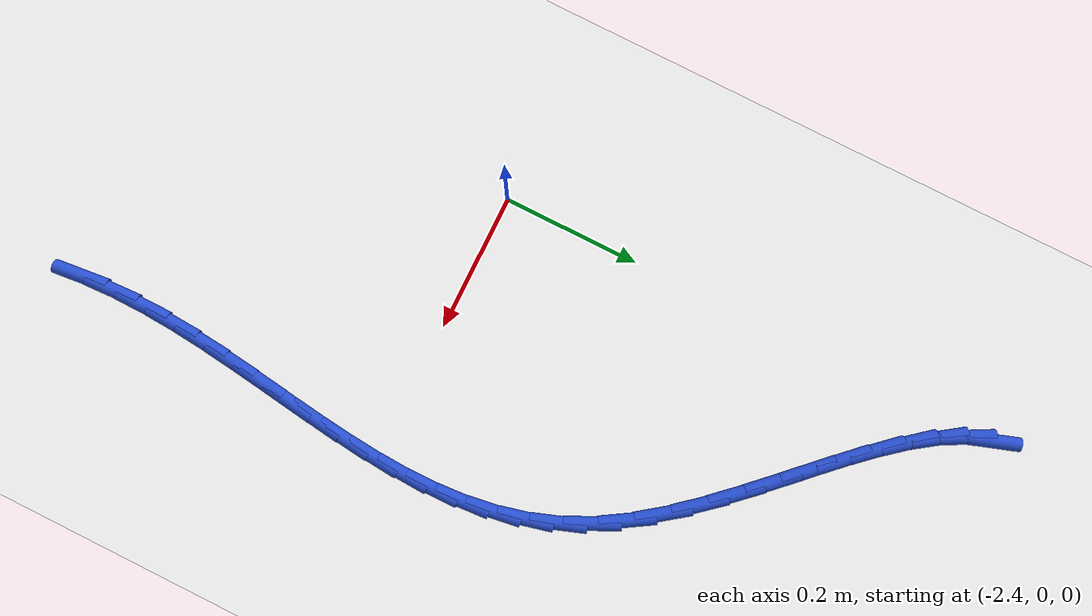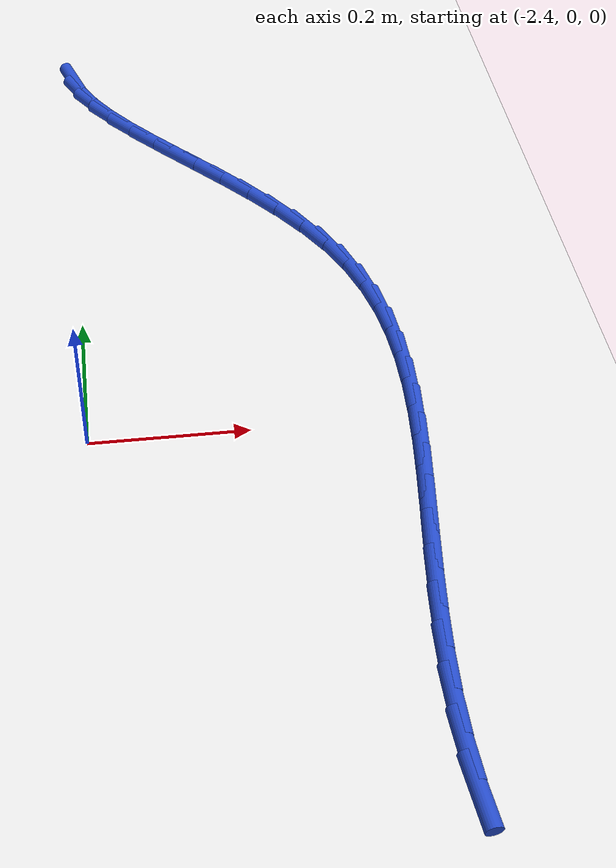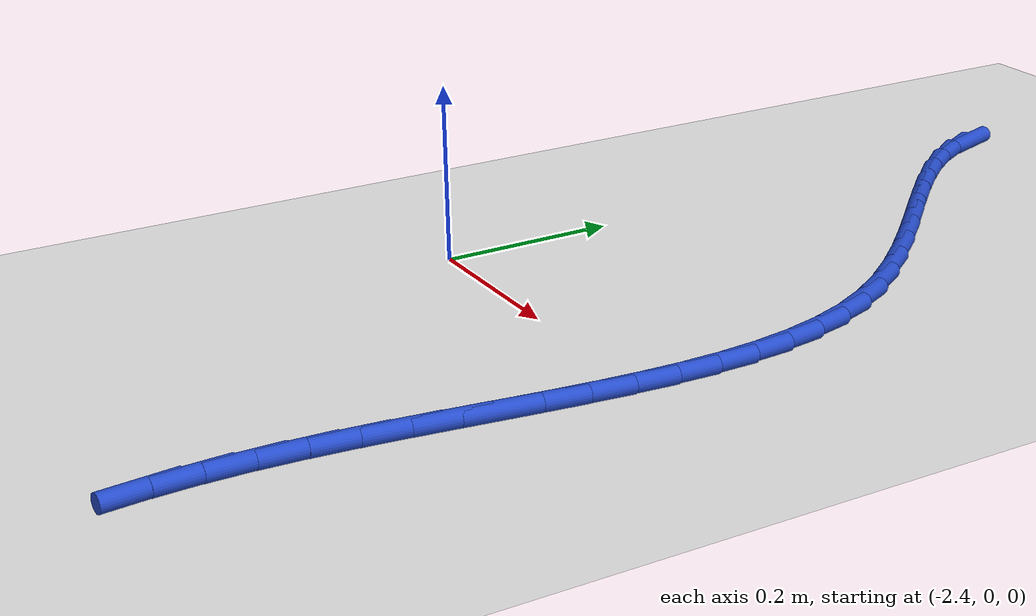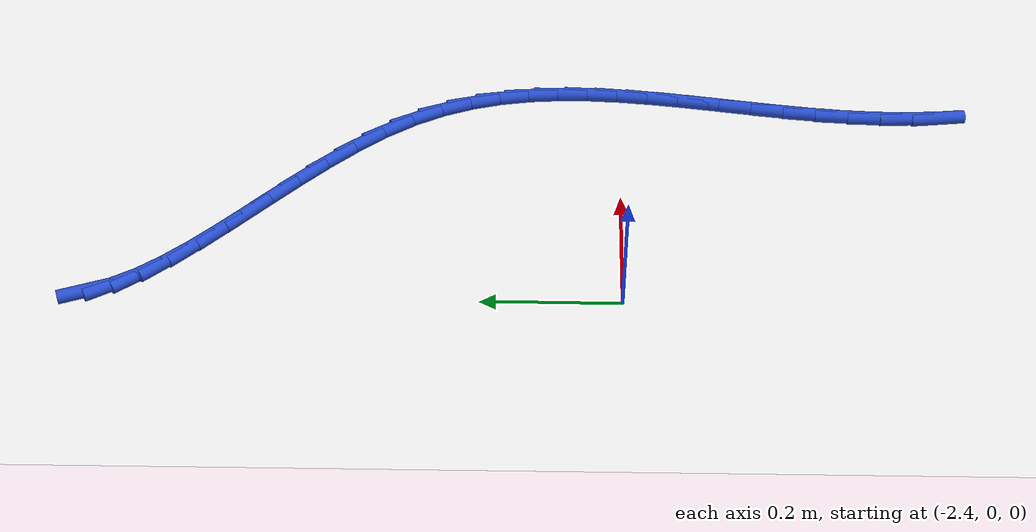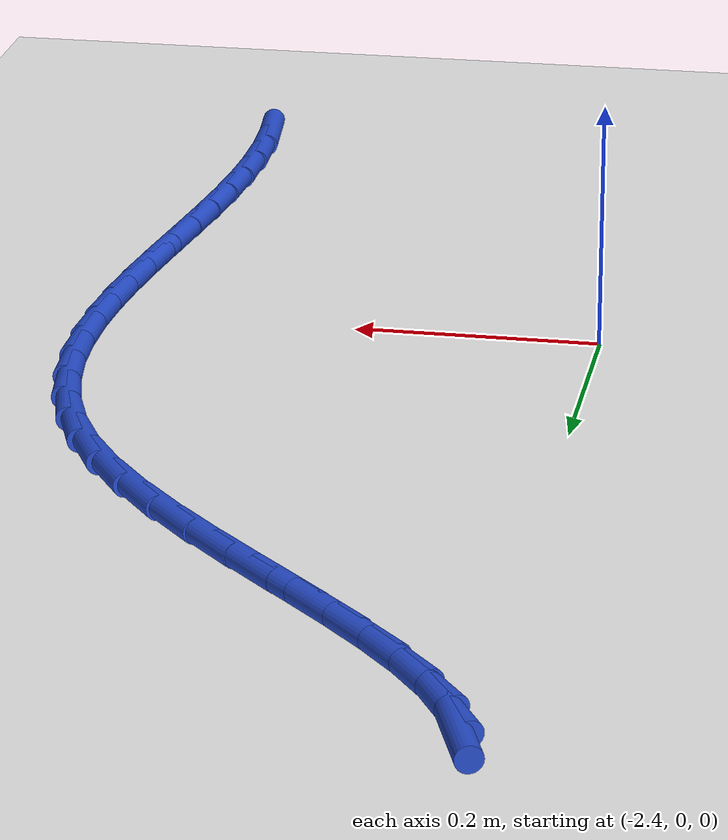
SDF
<sdf version="1.6">
 <world name="default">
  <model name="ground_plane">
   <static>1</static>
   <link name="link">
    <collision name="collision">
     <geometry><plane><normal>0 0 1</normal><size>100 100</size></plane></geometry>
     <surface><friction><ode><mu>100</mu><mu2>50</mu2></ode></friction></surface>
    </collision>
    <visual name="visual">
     <cast_shadows>0</cast_shadows>
     <geometry><plane><normal>0 0 1</normal><size>100 100</size></plane></geometry>
     <material>
      <script><uri>file://media/materials/scripts/gazebo.material</uri><name>Gazebo/WhiteGlow</name></script>
     </material>
    </visual>
   </link>
  </model>
  <model name="line">
   <link name="link_78">
    <pose>-2.3961420771294093 0.744754704922399 0.01 0 1.57 -1.2450248330038676</pose>
    <collision name="collision">
     <geometry><cylinder><radius>0.01</radius><length>0.08</length></cylinder></geometry>
    </collision>
    <visual name="visual">
     <material>
      <script><name>Gazebo/Blue</name><uri>file://media/materials/scripts/gazebo.material</uri></script>
     </material>
     <geometry><cylinder><radius>0.01</radius><length>0.08</length></cylinder></geometry>
    </visual>
   </link>
   <link name="link_79">
    <pose>-2.3850495198663983 0.7119177442947239 0.01 0 1.57 -1.0720881414288603</pose>
    <collision name="collision">
     <geometry><cylinder><radius>0.01</radius><length>0.08</length></cylinder></geometry>
    </collision>
    <visual name="visual">
     <material>
      <script><name>Gazebo/Blue</name><uri>file://media/materials/scripts/gazebo.material</uri></script>
     </material>
     <geometry><cylinder><radius>0.01</radius><length>0.08</length></cylinder></geometry>
    </visual>
   </link>
   <link name="link_80">
    <pose>-2.3668459981426637 0.6784938698624128 0.01 0 1.57 -0.9536956344488489</pose>
    <collision name="collision">
     <geometry><cylinder><radius>0.01</radius><length>0.08</length></cylinder></geometry>
    </collision>
    <visual name="visual">
     <material>
      <script><name>Gazebo/Blue</name><uri>file://media/materials/scripts/gazebo.material</uri></script>
     </material>
     <geometry><cylinder><radius>0.01</radius><length>0.08</length></cylinder></geometry>
    </visual>
   </link>
   <link name="link_81">
    <pose>-2.342693023057389 0.6444535911231485 0.01 0 1.57 -0.8754497083096799</pose>
    <collision name="collision">
     <geometry><cylinder><radius>0.01</radius><length>0.08</length></cylinder></geometry>
    </collision>
    <visual name="visual">
     <material>
      <script><name>Gazebo/Blue</name><uri>file://media/materials/scripts/gazebo.material</uri></script>
     </material>
     <geometry><cylinder><radius>0.01</radius><length>0.08</length></cylinder></geometry>
    </visual>
   </link>
   <link name="link_82">
    <pose>-2.3137521057097565 0.6097674175746115 0.01 0 1.57 -0.8265093204830671</pose>
    <collision name="collision">
     <geometry><cylinder><radius>0.01</radius><length>0.08</length></cylinder></geometry>
    </collision>
    <visual name="visual">
     <material>
      <script><name>Gazebo/Blue</name><uri>file://media/materials/scripts/gazebo.material</uri></script>
     </material>
     <geometry><cylinder><radius>0.01</radius><length>0.08</length></cylinder></geometry>
    </visual>
   </link>
   <link name="link_83">
    <pose>-2.281184757198949 0.5744058587144832 0.01 0 1.57 -0.799942636473255</pose>
    <collision name="collision">
     <geometry><cylinder><radius>0.01</radius><length>0.08</length></cylinder></geometry>
    </collision>
    <visual name="visual">
     <material>
      <script><name>Gazebo/Blue</name><uri>file://media/materials/scripts/gazebo.material</uri></script>
     </material>
     <geometry><cylinder><radius>0.01</radius><length>0.08</length></cylinder></geometry>
    </visual>
   </link>
   <link name="link_84">
    <pose>-2.2461524886241513 0.5383394240404458 0.01 0 1.57 -0.7917577419480151</pose>
    <collision name="collision">
     <geometry><cylinder><radius>0.01</radius><length>0.08</length></cylinder></geometry>
    </collision>
    <visual name="visual">
     <material>
      <script><name>Gazebo/Blue</name><uri>file://media/materials/scripts/gazebo.material</uri></script>
     </material>
     <geometry><cylinder><radius>0.01</radius><length>0.08</length></cylinder></geometry>
    </visual>
   </link>
   <link name="link_85">
    <pose>-2.209816811084546 0.5015386230501798 0.01 0 1.57 -0.8000790320910562</pose>
    <collision name="collision">
     <geometry><cylinder><radius>0.01</radius><length>0.08</length></cylinder></geometry>
    </collision>
    <visual name="visual">
     <material>
      <script><name>Gazebo/Blue</name><uri>file://media/materials/scripts/gazebo.material</uri></script>
     </material>
     <geometry><cylinder><radius>0.01</radius><length>0.08</length></cylinder></geometry>
    </visual>
   </link>
   <link name="link_86">
    <pose>-2.1733392356793173 0.46397396524136736 0.01 0 1.57 -0.8246654434546049</pose>
    <collision name="collision">
     <geometry><cylinder><radius>0.01</radius><length>0.08</length></cylinder></geometry>
    </collision>
    <visual name="visual">
     <material>
      <script><name>Gazebo/Blue</name><uri>file://media/materials/scripts/gazebo.material</uri></script>
     </material>
     <geometry><cylinder><radius>0.01</radius><length>0.08</length></cylinder></geometry>
    </visual>
   </link>
   <link name="link_87">
    <pose>-2.137881273507647 0.4256159601116897 0.01 0 1.57 -0.8667006648261706</pose>
    <collision name="collision">
     <geometry><cylinder><radius>0.01</radius><length>0.08</length></cylinder></geometry>
    </collision>
    <visual name="visual">
     <material>
      <script><name>Gazebo/Blue</name><uri>file://media/materials/scripts/gazebo.material</uri></script>
     </material>
     <geometry><cylinder><radius>0.01</radius><length>0.08</length></cylinder></geometry>
    </visual>
   </link>
   <link name="link_88">
    <pose>-2.104604435668718 0.38643511715882756 0.01 0 1.57 -0.9287464094243307</pose>
    <collision name="collision">
     <geometry><cylinder><radius>0.01</radius><length>0.08</length></cylinder></geometry>
    </collision>
    <visual name="visual">
     <material>
      <script><name>Gazebo/Blue</name><uri>file://media/materials/scripts/gazebo.material</uri></script>
     </material>
     <geometry><cylinder><radius>0.01</radius><length>0.08</length></cylinder></geometry>
    </visual>
   </link>
   <link name="link_89">
    <pose>-2.074670233261716 0.34640194588046347 0.01 0 1.57 -1.0146924329869844</pose>
    <collision name="collision">
     <geometry><cylinder><radius>0.01</radius><length>0.08</length></cylinder></geometry>
    </collision>
    <visual name="visual">
     <material>
      <script><name>Gazebo/Blue</name><uri>file://media/materials/scripts/gazebo.material</uri></script>
     </material>
     <geometry><cylinder><radius>0.01</radius><length>0.08</length></cylinder></geometry>
    </visual>
   </link>
   <link name="link_90">
    <pose>-2.049240128281186 0.3054869583836929 0.01 0 1.57 -1.1227490152327424</pose>
    <collision name="collision">
     <geometry><cylinder><radius>0.01</radius><length>0.08</length></cylinder></geometry>
    </collision>
    <visual name="visual">
     <material>
      <script><name>Gazebo/Blue</name><uri>file://media/materials/scripts/gazebo.material</uri></script>
     </material>
     <geometry><cylinder><radius>0.01</radius><length>0.08</length></cylinder></geometry>
    </visual>
   </link>
   <link name="link_91">
    <pose>-2.0291448115217743 0.2636782439180542 0.01 0 1.57 -1.2316161698890424</pose>
    <collision name="collision">
     <geometry><cylinder><radius>0.01</radius><length>0.08</length></cylinder></geometry>
    </collision>
    <visual name="visual">
     <material>
      <script><name>Gazebo/Blue</name><uri>file://media/materials/scripts/gazebo.material</uri></script>
     </material>
     <geometry><cylinder><radius>0.01</radius><length>0.08</length></cylinder></geometry>
    </visual>
   </link>
   <link name="link_92">
    <pose>-2.0140955471194406 0.22102337793333438 0.01 0 1.57 -1.3330167986435526</pose>
    <collision name="collision">
     <geometry><cylinder><radius>0.01</radius><length>0.08</length></cylinder></geometry>
    </collision>
    <visual name="visual">
     <material>
      <script><name>Gazebo/Blue</name><uri>file://media/materials/scripts/gazebo.material</uri></script>
     </material>
     <geometry><cylinder><radius>0.01</radius><length>0.08</length></cylinder></geometry>
    </visual>
   </link>
   <link name="link_93">
    <pose>-2.00356702102932 0.1775825076158713 0.01 0 1.57 -1.4239421245362538</pose>
    <collision name="collision">
     <geometry><cylinder><radius>0.01</radius><length>0.08</length></cylinder></geometry>
    </collision>
    <visual name="visual">
     <material>
      <script><name>Gazebo/Blue</name><uri>file://media/materials/scripts/gazebo.material</uri></script>
     </material>
     <geometry><cylinder><radius>0.01</radius><length>0.08</length></cylinder></geometry>
    </visual>
   </link>
   <link name="link_94">
    <pose>-1.9970339192065483 0.13341578015200034 0.01 0 1.57 -1.5025814509903588</pose>
    <collision name="collision">
     <geometry><cylinder><radius>0.01</radius><length>0.08</length></cylinder></geometry>
    </collision>
    <visual name="visual">
     <material>
      <script><name>Gazebo/Blue</name><uri>file://media/materials/scripts/gazebo.material</uri></script>
     </material>
     <geometry><cylinder><radius>0.01</radius><length>0.08</length></cylinder></geometry>
    </visual>
   </link>
   <link name="link_95">
    <pose>-1.993970927606261 0.08858334272805797 0.01 0 1.57 -1.5681950865210106</pose>
    <collision name="collision">
     <geometry><cylinder><radius>0.01</radius><length>0.08</length></cylinder></geometry>
    </collision>
    <visual name="visual">
     <material>
      <script><name>Gazebo/Blue</name><uri>file://media/materials/scripts/gazebo.material</uri></script>
     </material>
     <geometry><cylinder><radius>0.01</radius><length>0.08</length></cylinder></geometry>
    </visual>
   </link>
   <link name="link_96">
    <pose>-1.993852732183594 0.04314534253038067 0.01 0 1.57 1.5207920310600427</pose>
    <collision name="collision">
     <geometry><cylinder><radius>0.01</radius><length>0.08</length></cylinder></geometry>
    </collision>
    <visual name="visual">
     <material>
      <script><name>Gazebo/Blue</name><uri>file://media/materials/scripts/gazebo.material</uri></script>
     </material>
     <geometry><cylinder><radius>0.01</radius><length>0.08</length></cylinder></geometry>
    </visual>
   </link>
   <link name="link_97">
    <pose>-1.996154018893682 -0.0028380732546953134 0.01 0 1.57 1.4807548169322762</pose>
    <collision name="collision">
     <geometry><cylinder><radius>0.01</radius><length>0.08</length></cylinder></geometry>
    </collision>
    <visual name="visual">
     <material>
      <script><name>Gazebo/Blue</name><uri>file://media/materials/scripts/gazebo.material</uri></script>
     </material>
     <geometry><cylinder><radius>0.01</radius><length>0.08</length></cylinder></geometry>
    </visual>
   </link>
   <link name="link_98">
    <pose>-2.0003494736916623 -0.0493067574408345 0.01 0 1.57 1.4526909027816444</pose>
    <collision name="collision">
     <geometry><cylinder><radius>0.01</radius><length>0.08</length></cylinder></geometry>
    </collision>
    <visual name="visual">
     <material>
      <script><name>Gazebo/Blue</name><uri>file://media/materials/scripts/gazebo.material</uri></script>
     </material>
     <geometry><cylinder><radius>0.01</radius><length>0.08</length></cylinder></geometry>
    </visual>
   </link>
   <link name="link_99">
    <pose>-2.0059137825326685 -0.09620056284169862 0.01 0 1.57 1.4360275617204394</pose>
    <collision name="collision">
     <geometry><cylinder><radius>0.01</radius><length>0.08</length></cylinder></geometry>
    </collision>
    <visual name="visual">
     <material>
      <script><name>Gazebo/Blue</name><uri>file://media/materials/scripts/gazebo.material</uri></script>
     </material>
     <geometry><cylinder><radius>0.01</radius><length>0.08</length></cylinder></geometry>
    </visual>
   </link>
   <link name="link_100">
    <pose>-2.012321631371836 -0.14345934227095225 0.01 0 1.57 1.4303155896008037</pose>
    <collision name="collision">
     <geometry><cylinder><radius>0.01</radius><length>0.08</length></cylinder></geometry>
    </collision>
    <visual name="visual">
     <material>
      <script><name>Gazebo/Blue</name><uri>file://media/materials/scripts/gazebo.material</uri></script>
     </material>
     <geometry><cylinder><radius>0.01</radius><length>0.08</length></cylinder></geometry>
    </visual>
   </link>
   <link name="link_101">
    <pose>-2.0190477061643026 -0.19102294854225899 0.01 0 1.57 1.4352752870363221</pose>
    <collision name="collision">
     <geometry><cylinder><radius>0.01</radius><length>0.08</length></cylinder></geometry>
    </collision>
    <visual name="visual">
     <material>
      <script><name>Gazebo/Blue</name><uri>file://media/materials/scripts/gazebo.material</uri></script>
     </material>
     <geometry><cylinder><radius>0.01</radius><length>0.08</length></cylinder></geometry>
    </visual>
   </link>
   <link name="link_102">
    <pose>-2.0255666928652025 -0.2388312344692825 0.01 0 1.57 1.450803672544572</pose>
    <collision name="collision">
     <geometry><cylinder><radius>0.01</radius><length>0.08</length></cylinder></geometry>
    </collision>
    <visual name="visual">
     <material>
      <script><name>Gazebo/Blue</name><uri>file://media/materials/scripts/gazebo.material</uri></script>
     </material>
     <geometry><cylinder><radius>0.01</radius><length>0.08</length></cylinder></geometry>
    </visual>
   </link>
   <link name="link_103">
    <pose>-2.0313532774296714 -0.28682405286568735 0.01 0 1.57 1.4769511921160725</pose>
    <collision name="collision">
     <geometry><cylinder><radius>0.01</radius><length>0.08</length></cylinder></geometry>
    </collision>
    <visual name="visual">
     <material>
      <script><name>Gazebo/Blue</name><uri>file://media/materials/scripts/gazebo.material</uri></script>
     </material>
     <geometry><cylinder><radius>0.01</radius><length>0.08</length></cylinder></geometry>
    </visual>
   </link>
   <link name="link_104">
    <pose>-2.035882145812845 -0.33494125654513524 0.01 0 1.57 1.513868364825583</pose>
    <collision name="collision">
     <geometry><cylinder><radius>0.01</radius><length>0.08</length></cylinder></geometry>
    </collision>
    <visual name="visual">
     <material>
      <script><name>Gazebo/Blue</name><uri>file://media/materials/scripts/gazebo.material</uri></script>
     </material>
     <geometry><cylinder><radius>0.01</radius><length>0.08</length></cylinder></geometry>
    </visual>
   </link>
   <link name="link_105">
    <pose>-2.0386279839698576 -0.38312269832129076 0.01 0 1.57 1.5616566314810512</pose>
    <collision name="collision">
     <geometry><cylinder><radius>0.01</radius><length>0.08</length></cylinder></geometry>
    </collision>
    <visual name="visual">
     <material>
      <script><name>Gazebo/Blue</name><uri>file://media/materials/scripts/gazebo.material</uri></script>
     </material>
     <geometry><cylinder><radius>0.01</radius><length>0.08</length></cylinder></geometry>
    </visual>
   </link>
   <link name="link_106">
    <pose>-2.039068391525378 -0.43130759697750504 0.01 0 1.57 -1.5252651843566936</pose>
    <collision name="collision">
     <geometry><cylinder><radius>0.01</radius><length>0.08</length></cylinder></geometry>
    </collision>
    <visual name="visual">
     <material>
      <script><name>Gazebo/Blue</name><uri>file://media/materials/scripts/gazebo.material</uri></script>
     </material>
     <geometry><cylinder><radius>0.01</radius><length>0.08</length></cylinder></geometry>
    </visual>
   </link>
   <link name="link_107">
    <pose>-2.0368775213360206 -0.4793924002465028 0.01 0 1.57 -1.470114358098129</pose>
    <collision name="collision">
     <geometry><cylinder><radius>0.01</radius><length>0.08</length></cylinder></geometry>
    </collision>
    <visual name="visual">
     <material>
      <script><name>Gazebo/Blue</name><uri>file://media/materials/scripts/gazebo.material</uri></script>
     </material>
     <geometry><cylinder><radius>0.01</radius><length>0.08</length></cylinder></geometry>
    </visual>
   </link>
  </model>
 </world>
</sdf>
